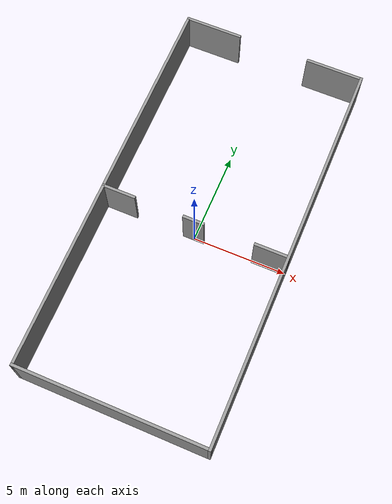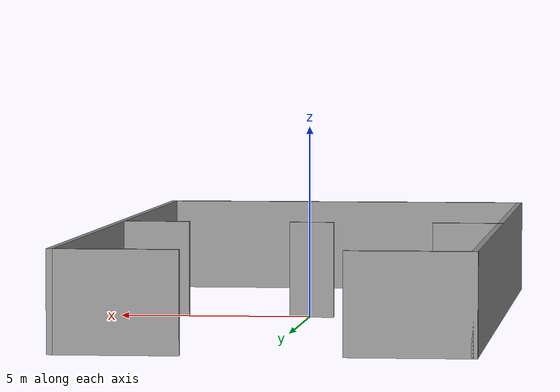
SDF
<?xml version='1.0'?>
<sdf version='1.6'>
  <model name='service_wall1'>
    <pose frame=''>0 0.5 0 0 -0 0</pose>
    <link name='Wall_1'>
      <collision name='Wall_1_Collision'>
        <geometry>
          <box>
            <size>21.15 0.15 2.5</size>
          </box>
        </geometry>
        <pose frame=''>0 0 1.25 0 -0 0</pose>
      </collision>
      <visual name='Wall_1_Visual'>
        <pose frame=''>0 0 1.25 0 -0 0</pose>
        <geometry>
          <box>
            <size>21.15 0.15 2.5</size>
          </box>
        </geometry>
        <material>
          <script>
            <uri>file://media/materials/scripts/gazebo.material</uri>
            <name>Gazebo/Grey</name>
          </script>
          <ambient>1 1 1 1</ambient>
        </material>
        <meta>
          <layer>0</layer>
        </meta>
      </visual>
      <pose frame=''>-5 0 0 0 -0 -1.5708</pose>
    </link>
    <link name='Wall_10'>
      <collision name='Wall_10_Collision'>
        <geometry>
          <box>
            <size>3.15 0.15 2.5</size>
          </box>
        </geometry>
        <pose frame=''>0 0 1.25 0 -0 0</pose>
      </collision>
      <visual name='Wall_10_Visual'>
        <pose frame=''>0 0 1.25 0 -0 0</pose>
        <geometry>
          <box>
            <size>3.15 0.15 2.5</size>
          </box>
        </geometry>
        <material>
          <script>
            <uri>file://media/materials/scripts/gazebo.material</uri>
            <name>Gazebo/Grey</name>
          </script>
          <ambient>1 1 1 1</ambient>
        </material>
        <meta>
          <layer>0</layer>
        </meta>
      </visual>
      <pose frame=''>-3.5 10.5 0 0 -0 0</pose>
    </link>
    <link name='Wall_12'>
      <collision name='Wall_12_Collision'>
        <geometry>
          <box>
            <size>3.15 0.15 2.5</size>
          </box>
        </geometry>
        <pose frame=''>0 0 1.25 0 -0 0</pose>
      </collision>
      <visual name='Wall_12_Visual'>
        <pose frame=''>0 0 1.25 0 -0 0</pose>
        <geometry>
          <box>
            <size>3.15 0.15 2.5</size>
          </box>
        </geometry>
        <material>
          <script>
            <uri>file://media/materials/scripts/gazebo.material</uri>
            <name>Gazebo/Grey</name>
          </script>
          <ambient>1 1 1 1</ambient>
        </material>
        <meta>
          <layer>0</layer>
        </meta>
      </visual>
      <pose frame=''>3.5 10.5 0 0 -0 3.14159</pose>
    </link>
    <link name='Wall_3'>
      <collision name='Wall_3_Collision'>
        <geometry>
          <box>
            <size>21.15 0.15 2.5</size>
          </box>
        </geometry>
        <pose frame=''>0 0 1.25 0 -0 0</pose>
      </collision>
      <visual name='Wall_3_Visual'>
        <pose frame=''>0 0 1.25 0 -0 0</pose>
        <geometry>
          <box>
            <size>21.15 0.15 2.5</size>
          </box>
        </geometry>
        <material>
          <script>
            <uri>file://media/materials/scripts/gazebo.material</uri>
            <name>Gazebo/Grey</name>
          </script>
          <ambient>1 1 1 1</ambient>
        </material>
        <meta>
          <layer>0</layer>
        </meta>
      </visual>
      <pose frame=''>5 0 0 0 -0 -1.5708</pose>
    </link>
    <link name='Wall_5'>
      <pose frame=''>0 -0.5 0 0 -0 0</pose>
      <visual name='Wall_5_Visual_0'>
        <pose frame=''>-4.15194 0 1.25 0 -0 0</pose>
        <geometry>
          <box>
            <size>1.84612 0.15 2.5</size>
          </box>
        </geometry>
        <material>
          <script>
            <uri>file://media/materials/scripts/gazebo.material</uri>
            <name>Gazebo/Grey</name>
          </script>
          <ambient>1 1 1 1</ambient>
        </material>
        <meta>
          <layer>0</layer>
        </meta>
      </visual>
      <collision name='Wall_5_Collision_0'>
        <geometry>
          <box>
            <size>1.84612 0.15 2.5</size>
          </box>
        </geometry>
        <pose frame=''>-4.15194 0 1.25 0 -0 0</pose>
      </collision>
      <visual name='Wall_5_Visual_1'>
        <pose frame=''>-0.046194 0 1.25 0 -0 0</pose>
        <geometry>
          <box>
            <size>1.15643 0.15 2.5</size>
          </box>
        </geometry>
        <material>
          <script>
            <uri>file://media/materials/scripts/gazebo.material</uri>
            <name>Gazebo/Grey</name>
          </script>
          <ambient>1 1 1 1</ambient>
        </material>
        <meta>
          <layer>0</layer>
        </meta>
      </visual>
      <collision name='Wall_5_Collision_1'>
        <geometry>
          <box>
            <size>1.15643 0.15 2.5</size>
          </box>
        </geometry>
        <pose frame=''>-0.046194 0 1.25 0 -0 0</pose>
      </collision>
      <visual name='Wall_5_Visual_2'>
        <pose frame=''>4.13351 0 1.25 0 -0 0</pose>
        <geometry>
          <box>
            <size>1.88298 0.15 2.5</size>
          </box>
        </geometry>
        <material>
          <script>
            <uri>file://media/materials/scripts/gazebo.material</uri>
            <name>Gazebo/Grey</name>
          </script>
          <ambient>1 1 1 1</ambient>
        </material>
        <meta>
          <layer>0</layer>
        </meta>
      </visual>
      <collision name='Wall_5_Collision_2'>
        <geometry>
          <box>
            <size>1.88298 0.15 2.5</size>
          </box>
        </geometry>
        <pose frame=''>4.13351 0 1.25 0 -0 0</pose>
      </collision>
    </link>
    <link name='Wall_7'>
      <collision name='Wall_7_Collision'>
        <geometry>
          <box>
            <size>10.15 0.15 2.5</size>
          </box>
        </geometry>
        <pose frame=''>0 0 1.25 0 -0 0</pose>
      </collision>
      <visual name='Wall_7_Visual'>
        <pose frame=''>0 0 1.25 0 -0 0</pose>
        <geometry>
          <box>
            <size>10.15 0.15 2.5</size>
          </box>
        </geometry>
        <material>
          <script>
            <uri>file://media/materials/scripts/gazebo.material</uri>
            <name>Gazebo/Grey</name>
          </script>
          <ambient>1 1 1 1</ambient>
        </material>
        <meta>
          <layer>0</layer>
        </meta>
      </visual>
      <pose frame=''>0 -10.5 0 0 -0 0</pose>
    </link>
    <static>1</static>
  </model>
</sdf>
